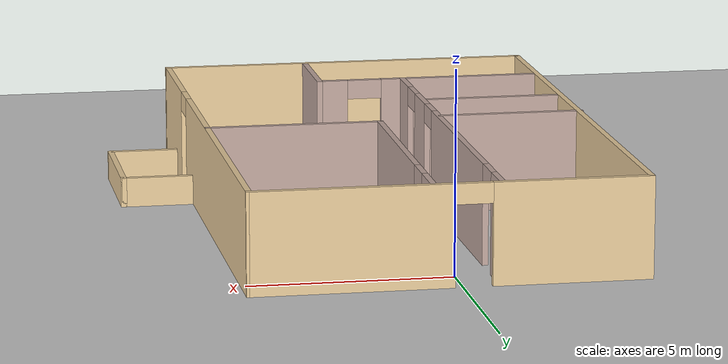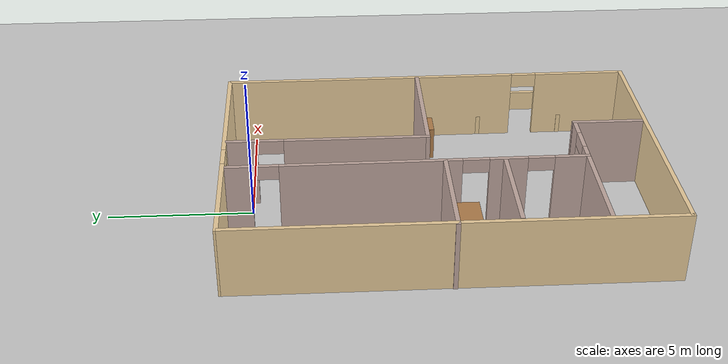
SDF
<sdf version="1.6">
 <world name="default">
  <plugin name="welcome_message" filename="libhello.so"/>
  <light name="sun" type="directional">
   <pose>0 0 10 0 -0 0</pose>
   <diffuse>0.8 0.8 0.8 1</diffuse>
   <specular>0.2 0.2 0.2 1</specular>
   <attenuation>
    <range>1000</range>
    <constant>0.9</constant>
    <linear>0.01</linear>
    <quadratic>0.001</quadratic>
   </attenuation>
   <direction>-0.5 0.1 -0.9</direction>
  </light>
  <model name="ground_plane">
   <static>1</static>
   <link name="link">
    <collision name="collision">
     <geometry><plane><normal>0 0 1</normal><size>100 100</size></plane></geometry>
     <surface>
      <contact><collide_bitmask>65535</collide_bitmask></contact>
      <friction><ode><mu>100</mu><mu2>50</mu2></ode></friction>
     </surface>
    </collision>
    <visual name="visual">
     <cast_shadows>0</cast_shadows>
     <geometry><plane><normal>0 0 1</normal><size>100 100</size></plane></geometry>
     <material>
      <script><uri>file://media/materials/scripts/gazebo.material</uri><name>Gazebo/Grey</name></script>
     </material>
    </visual>
   </link>
  </model>
  <gravity>0 0 -9.8</gravity>
  <magnetic_field>6e-06 2.3e-05 -4.2e-05</magnetic_field>
  <atmosphere type="adiabatic"/>
  <physics name="default_physics" default="0" type="ode">
   <max_step_size>0.001</max_step_size>
   <real_time_factor>1</real_time_factor>
   <real_time_update_rate>1000</real_time_update_rate>
  </physics>
  <scene><ambient>0.4 0.4 0.4 1</ambient><background>0.7 0.7 0.7 1</background><shadows>1</shadows></scene>
  <spherical_coordinates>
   <surface_model>EARTH_WGS84</surface_model>
   <latitude_deg>0</latitude_deg>
   <longitude_deg>0</longitude_deg>
   <elevation>0</elevation>
   <heading_deg>0</heading_deg>
  </spherical_coordinates>
  <model name="Building">
   <pose>1.19328 -6.44935 0 0 -0 0</pose>
   <link name="Wall_0">
    <collision name="Wall_0_Collision">
     <geometry><box><size>14.75 0.15 2.5</size></box></geometry>
     <pose>0 0 1.25 0 -0 0</pose>
    </collision>
    <visual name="Wall_0_Visual">
     <pose>0 0 1.25 0 -0 0</pose>
     <geometry><box><size>14.75 0.15 2.5</size></box></geometry>
     <material>
      <script><uri>file://media/materials/scripts/gazebo.material</uri><name>Gazebo/Grey</name></script>
      <ambient>0.921569 0.807843 0.615686 1</ambient>
     </material>
     <meta><layer>0</layer></meta>
    </visual>
    <pose>-5.70481 -0.037911 0 0 0 -1.5708</pose>
   </link>
   <link name="Wall_1">
    <collision name="Wall_1_Collision">
     <geometry><box><size>9.72533 0.15 2.5</size></box></geometry>
     <pose>0 0 1.25 0 -0 0</pose>
    </collision>
    <visual name="Wall_1_Visual">
     <pose>0 0 1.25 0 -0 0</pose>
     <geometry><box><size>9.72533 0.15 2.5</size></box></geometry>
     <material>
      <script><uri>file://media/materials/scripts/gazebo.material</uri><name>Gazebo/Grey</name></script>
      <ambient>0.921569 0.807843 0.615686 1</ambient>
     </material>
     <meta><layer>0</layer></meta>
    </visual>
    <pose>-0.870929 -7.33745 0 0 -0 9.7e-05</pose>
   </link>
   <link name="Wall_10">
    <collision name="Wall_10_Collision">
     <geometry><box><size>3.75 0.15 2.5</size></box></geometry>
     <pose>0 0 1.25 0 -0 0</pose>
    </collision>
    <visual name="Wall_10_Visual">
     <pose>0 0 1.25 0 -0 0</pose>
     <geometry><box><size>3.75 0.15 2.5</size></box></geometry>
     <material>
      <script><uri>file://media/materials/scripts/gazebo.material</uri><name>Gazebo/Grey</name></script>
      <ambient>0.760784 0.662745 0.627451 1</ambient>
     </material>
     <meta><layer>0</layer></meta>
    </visual>
    <pose>-3.88937 -4.84832 0 0 -0 3.14159</pose>
   </link>
   <link name="Wall_14">
    <collision name="Wall_14_Collision">
     <geometry><box><size>2.5 0.15 2.5</size></box></geometry>
     <pose>0 0 1.25 0 -0 0</pose>
    </collision>
    <visual name="Wall_14_Visual">
     <pose>0 0 1.25 0 -0 0</pose>
     <geometry><box><size>2.5 0.15 2.5</size></box></geometry>
     <material>
      <script><uri>file://media/materials/scripts/gazebo.material</uri><name>Gazebo/Grey</name></script>
      <ambient>0.760784 0.662745 0.627451 1</ambient>
     </material>
     <meta><layer>0</layer></meta>
    </visual>
    <pose>0.19415 -6.01042 0 0 0 -1.5708</pose>
   </link>
   <link name="Wall_16">
    <collision name="Wall_16_Collision">
     <geometry><box><size>4.5 0.15 2.5</size></box></geometry>
     <pose>0 0 1.25 0 -0 0</pose>
    </collision>
    <visual name="Wall_16_Visual">
     <pose>0 0 1.25 0 -0 0</pose>
     <geometry><box><size>4.5 0.15 2.5</size></box></geometry>
     <material>
      <script><uri>file://media/materials/scripts/gazebo.material</uri><name>Gazebo/Grey</name></script>
      <ambient>0.760784 0.662745 0.627451 1</ambient>
     </material>
     <meta><layer>0</layer></meta>
    </visual>
    <pose>1.67785 0.374679 0 0 -0 0</pose>
   </link>
   <link name="Wall_18">
    <collision name="Wall_18_Collision">
     <geometry><box><size>3.5 0.15 2.5</size></box></geometry>
     <pose>0 0 1.25 0 -0 0</pose>
    </collision>
    <visual name="Wall_18_Visual">
     <pose>0 0 1.25 0 -0 0</pose>
     <geometry><box><size>3.5 0.15 2.5</size></box></geometry>
     <material>
      <script><uri>file://media/materials/scripts/gazebo.material</uri><name>Gazebo/Grey</name></script>
      <ambient>0.760784 0.662745 0.627451 1</ambient>
     </material>
     <meta><layer>0</layer></meta>
    </visual>
    <pose>-3.86495 -2.05872 0 0 -0 3.14159</pose>
   </link>
   <link name="Wall_20">
    <collision name="Wall_20_Collision">
     <geometry><box><size>3.75 0.15 2.5</size></box></geometry>
     <pose>0 0 1.25 0 -0 0</pose>
    </collision>
    <visual name="Wall_20_Visual">
     <pose>0 0 1.25 0 -0 0</pose>
     <geometry><box><size>3.75 0.15 2.5</size></box></geometry>
     <material>
      <script><uri>file://media/materials/scripts/gazebo.material</uri><name>Gazebo/Grey</name></script>
      <ambient>0.760784 0.662745 0.627451 1</ambient>
     </material>
     <meta><layer>0</layer></meta>
    </visual>
    <pose>-3.93705 -0.048521 0 0 -0 3.14159</pose>
   </link>
   <link name="Wall_22">
    <pose>-0.991697 -4.84832 0 0 -0 0</pose>
    <visual name="Wall_22_Visual_0">
     <pose>-0.794379 0 1.25 0 -0 0</pose>
     <geometry><box><size>0.661242 0.15 2.5</size></box></geometry>
     <material>
      <script><uri>file://media/materials/scripts/gazebo.material</uri><name>Gazebo/Grey</name></script>
      <ambient>0.760784 0.662745 0.627451 1</ambient>
     </material>
     <meta><layer>0</layer></meta>
    </visual>
    <collision name="Wall_22_Collision_0">
     <geometry><box><size>0.661242 0.15 2.5</size></box></geometry>
     <pose>-0.794379 0 1.25 0 -0 0</pose>
    </collision>
    <visual name="Wall_22_Visual_1">
     <pose>0.780621 0 1.25 0 -0 0</pose>
     <geometry><box><size>0.688758 0.15 2.5</size></box></geometry>
     <material>
      <script><uri>file://media/materials/scripts/gazebo.material</uri><name>Gazebo/Grey</name></script>
      <ambient>0.760784 0.662745 0.627451 1</ambient>
     </material>
     <meta><layer>0</layer></meta>
    </visual>
    <collision name="Wall_22_Collision_1">
     <geometry><box><size>0.688758 0.15 2.5</size></box></geometry>
     <pose>0.780621 0 1.25 0 -0 0</pose>
    </collision>
    <visual name="Wall_22_Visual_2">
     <pose>-0.013758 0 2.25 0 -0 0</pose>
     <geometry><box><size>0.9 0.15 0.5</size></box></geometry>
     <material>
      <script><uri>file://media/materials/scripts/gazebo.material</uri><name>Gazebo/Grey</name></script>
      <ambient>0.760784 0.662745 0.627451 1</ambient>
     </material>
     <meta><layer>0</layer></meta>
    </visual>
    <collision name="Wall_22_Collision_2">
     <geometry><box><size>0.9 0.15 0.5</size></box></geometry>
     <pose>-0.013758 0 2.25 0 -0 0</pose>
    </collision>
   </link>
   <link name="Wall_24">
    <pose>-0.49715 3.79968 0 0 -0 1.5708</pose>
    <visual name="Wall_24_Visual_0">
     <pose>-0.98817 0 1.25 0 -0 0</pose>
     <geometry><box><size>5.02366 0.15 2.5</size></box></geometry>
     <material>
      <script><uri>file://media/materials/scripts/gazebo.material</uri><name>Gazebo/Grey</name></script>
      <ambient>0.760784 0.662745 0.627451 1</ambient>
     </material>
     <meta><layer>0</layer></meta>
    </visual>
    <collision name="Wall_24_Collision_0">
     <geometry><box><size>5.02366 0.15 2.5</size></box></geometry>
     <pose>-0.98817 0 1.25 0 -0 0</pose>
    </collision>
    <visual name="Wall_24_Visual_1">
     <pose>2.96183 0 1.25 0 -0 0</pose>
     <geometry><box><size>1.07634 0.15 2.5</size></box></geometry>
     <material>
      <script><uri>file://media/materials/scripts/gazebo.material</uri><name>Gazebo/Grey</name></script>
      <ambient>0.760784 0.662745 0.627451 1</ambient>
     </material>
     <meta><layer>0</layer></meta>
    </visual>
    <collision name="Wall_24_Collision_1">
     <geometry><box><size>1.07634 0.15 2.5</size></box></geometry>
     <pose>2.96183 0 1.25 0 -0 0</pose>
    </collision>
    <visual name="Wall_24_Visual_2">
     <pose>1.97366 0 2.25 0 -0 0</pose>
     <geometry><box><size>0.9 0.15 0.5</size></box></geometry>
     <material>
      <script><uri>file://media/materials/scripts/gazebo.material</uri><name>Gazebo/Grey</name></script>
      <ambient>0.760784 0.662745 0.627451 1</ambient>
     </material>
     <meta><layer>0</layer></meta>
    </visual>
    <collision name="Wall_24_Collision_2">
     <geometry><box><size>0.9 0.15 0.5</size></box></geometry>
     <pose>1.97366 0 2.25 0 -0 0</pose>
    </collision>
   </link>
   <link name="Wall_29">
    <pose>3.87687 0.000265 0 0 0 -1.56537</pose>
    <visual name="Wall_29_Visual_0">
     <pose>-2.10776 0 1.25 0 -0 0</pose>
     <geometry><box><size>10.6092 0.15 2.5</size></box></geometry>
     <material>
      <script><uri>file://media/materials/scripts/gazebo.material</uri><name>Gazebo/Grey</name></script>
      <ambient>0.921569 0.807843 0.615686 1</ambient>
     </material>
     <meta><layer>0</layer></meta>
    </visual>
    <collision name="Wall_29_Collision_0">
     <geometry><box><size>10.6092 0.15 2.5</size></box></geometry>
     <pose>-2.10776 0 1.25 0 -0 0</pose>
    </collision>
    <visual name="Wall_29_Visual_1">
     <pose>5.75459 0 1.25 0 -0 0</pose>
     <geometry><box><size>3.31552 0.15 2.5</size></box></geometry>
     <material>
      <script><uri>file://media/materials/scripts/gazebo.material</uri><name>Gazebo/Grey</name></script>
      <ambient>0.921569 0.807843 0.615686 1</ambient>
     </material>
     <meta><layer>0</layer></meta>
    </visual>
    <collision name="Wall_29_Collision_1">
     <geometry><box><size>3.31552 0.15 2.5</size></box></geometry>
     <pose>5.75459 0 1.25 0 -0 0</pose>
    </collision>
    <visual name="Wall_29_Visual_2">
     <pose>3.64683 0 2.25 0 -0 0</pose>
     <geometry><box><size>0.9 0.15 0.5</size></box></geometry>
     <material>
      <script><uri>file://media/materials/scripts/gazebo.material</uri><name>Gazebo/Grey</name></script>
      <ambient>0.921569 0.807843 0.615686 1</ambient>
     </material>
     <meta><layer>0</layer></meta>
    </visual>
    <collision name="Wall_29_Collision_2">
     <geometry><box><size>0.9 0.15 0.5</size></box></geometry>
     <pose>3.64683 0 2.25 0 -0 0</pose>
    </collision>
   </link>
   <link name="Wall_31">
    <collision name="Wall_31_Collision">
     <geometry><box><size>2 0.15 0.75</size></box></geometry>
     <pose>0 0 0.375 0 -0 0</pose>
    </collision>
    <visual name="Wall_31_Visual">
     <pose>0 0 0.375 0 -0 0</pose>
     <geometry><box><size>2 0.15 0.75</size></box></geometry>
     <material>
      <script><uri>file://media/materials/scripts/gazebo.material</uri><name>Gazebo/Grey</name></script>
      <ambient>0.921569 0.807843 0.615686 1</ambient>
     </material>
     <meta><layer>0</layer></meta>
    </visual>
    <pose>4.81205 -2.00149 0 0 -0 0</pose>
   </link>
   <link name="Wall_32">
    <collision name="Wall_32_Collision">
     <geometry><box><size>3.25 0.15 0.75</size></box></geometry>
     <pose>0 0 0.375 0 -0 0</pose>
    </collision>
    <visual name="Wall_32_Visual">
     <pose>0 0 0.375 0 -0 0</pose>
     <geometry><box><size>3.25 0.15 0.75</size></box></geometry>
     <material>
      <script><uri>file://media/materials/scripts/gazebo.material</uri><name>Gazebo/Grey</name></script>
      <ambient>0.921569 0.807843 0.615686 1</ambient>
     </material>
     <meta><layer>0</layer></meta>
    </visual>
    <pose>5.73705 -3.55149 0 0 0 -1.5708</pose>
   </link>
   <link name="Wall_33">
    <collision name="Wall_33_Collision">
     <geometry><box><size>2 0.15 0.75</size></box></geometry>
     <pose>0 0 0.375 0 -0 0</pose>
    </collision>
    <visual name="Wall_33_Visual">
     <pose>0 0 0.375 0 -0 0</pose>
     <geometry><box><size>2 0.15 0.75</size></box></geometry>
     <material>
      <script><uri>file://media/materials/scripts/gazebo.material</uri><name>Gazebo/Grey</name></script>
      <ambient>0.921569 0.807843 0.615686 1</ambient>
     </material>
     <meta><layer>0</layer></meta>
    </visual>
    <pose>4.81205 -5.10149 0 0 -0 3.14159</pose>
   </link>
   <link name="Wall_7">
    <pose>-0.93145 7.33751 0 0 -0 3.14159</pose>
    <visual name="Wall_7_Visual_0">
     <pose>-2.38427 0 1.25 0 -0 0</pose>
     <geometry><box><size>4.91846 0.15 2.5</size></box></geometry>
     <material>
      <script><uri>file://media/materials/scripts/gazebo.material</uri><name>Gazebo/Grey</name></script>
      <ambient>0.921569 0.807843 0.615686 1</ambient>
     </material>
     <meta><layer>0</layer></meta>
    </visual>
    <collision name="Wall_7_Collision_0">
     <geometry><box><size>4.91846 0.15 2.5</size></box></geometry>
     <pose>-2.38427 0 1.25 0 -0 0</pose>
    </collision>
    <visual name="Wall_7_Visual_1">
     <pose>2.90923 0 1.25 0 -0 0</pose>
     <geometry><box><size>3.86854 0.15 2.5</size></box></geometry>
     <material>
      <script><uri>file://media/materials/scripts/gazebo.material</uri><name>Gazebo/Grey</name></script>
      <ambient>0.921569 0.807843 0.615686 1</ambient>
     </material>
     <meta><layer>0</layer></meta>
    </visual>
    <collision name="Wall_7_Collision_1">
     <geometry><box><size>3.86854 0.15 2.5</size></box></geometry>
     <pose>2.90923 0 1.25 0 -0 0</pose>
    </collision>
    <visual name="Wall_7_Visual_2">
     <pose>0.524956 0 2.25 0 -0 0</pose>
     <geometry><box><size>0.9 0.15 0.5</size></box></geometry>
     <material>
      <script><uri>file://media/materials/scripts/gazebo.material</uri><name>Gazebo/Grey</name></script>
      <ambient>0.921569 0.807843 0.615686 1</ambient>
     </material>
     <meta><layer>0</layer></meta>
    </visual>
    <collision name="Wall_7_Collision_2">
     <geometry><box><size>0.9 0.15 0.5</size></box></geometry>
     <pose>0.524956 0 2.25 0 -0 0</pose>
    </collision>
   </link>
   <link name="Wall_9">
    <pose>-2.08937 1.20168 0 0 0 -1.56292</pose>
    <visual name="Wall_9_Visual_0">
     <pose>-5.6461 0 1.25 0 -0 0</pose>
     <geometry><box><size>0.957792 0.15 2.5</size></box></geometry>
     <material>
      <script><uri>file://media/materials/scripts/gazebo.material</uri><name>Gazebo/Grey</name></script>
      <ambient>0.760784 0.662745 0.627451 1</ambient>
     </material>
     <meta><layer>0</layer></meta>
    </visual>
    <collision name="Wall_9_Collision_0">
     <geometry><box><size>0.957792 0.15 2.5</size></box></geometry>
     <pose>-5.6461 0 1.25 0 -0 0</pose>
    </collision>
    <visual name="Wall_9_Visual_1">
     <pose>-1.21814 0 1.25 0 -0 0</pose>
     <geometry><box><size>6.09813 0.15 2.5</size></box></geometry>
     <material>
      <script><uri>file://media/materials/scripts/gazebo.material</uri><name>Gazebo/Grey</name></script>
      <ambient>0.760784 0.662745 0.627451 1</ambient>
     </material>
     <meta><layer>0</layer></meta>
    </visual>
    <collision name="Wall_9_Collision_1">
     <geometry><box><size>6.09813 0.15 2.5</size></box></geometry>
     <pose>-1.21814 0 1.25 0 -0 0</pose>
    </collision>
    <visual name="Wall_9_Visual_2">
     <pose>3.37888 0 1.25 0 -0 0</pose>
     <geometry><box><size>1.29592 0.15 2.5</size></box></geometry>
     <material>
      <script><uri>file://media/materials/scripts/gazebo.material</uri><name>Gazebo/Grey</name></script>
      <ambient>0.760784 0.662745 0.627451 1</ambient>
     </material>
     <meta><layer>0</layer></meta>
    </visual>
    <collision name="Wall_9_Collision_2">
     <geometry><box><size>1.29592 0.15 2.5</size></box></geometry>
     <pose>3.37888 0 1.25 0 -0 0</pose>
    </collision>
    <visual name="Wall_9_Visual_3">
     <pose>5.52592 0 1.25 0 -0 0</pose>
     <geometry><box><size>1.19816 0.15 2.5</size></box></geometry>
     <material>
      <script><uri>file://media/materials/scripts/gazebo.material</uri><name>Gazebo/Grey</name></script>
      <ambient>0.760784 0.662745 0.627451 1</ambient>
     </material>
     <meta><layer>0</layer></meta>
    </visual>
    <collision name="Wall_9_Collision_3">
     <geometry><box><size>1.19816 0.15 2.5</size></box></geometry>
     <pose>5.52592 0 1.25 0 -0 0</pose>
    </collision>
    <visual name="Wall_9_Visual_4">
     <pose>-4.71721 0 2.25 0 -0 0</pose>
     <geometry><box><size>0.9 0.15 0.5</size></box></geometry>
     <material>
      <script><uri>file://media/materials/scripts/gazebo.material</uri><name>Gazebo/Grey</name></script>
      <ambient>0.760784 0.662745 0.627451 1</ambient>
     </material>
     <meta><layer>0</layer></meta>
    </visual>
    <collision name="Wall_9_Collision_4">
     <geometry><box><size>0.9 0.15 0.5</size></box></geometry>
     <pose>-4.71721 0 2.25 0 -0 0</pose>
    </collision>
    <visual name="Wall_9_Visual_5">
     <pose>2.28092 0 2.25 0 -0 0</pose>
     <geometry><box><size>0.9 0.15 0.5</size></box></geometry>
     <material>
      <script><uri>file://media/materials/scripts/gazebo.material</uri><name>Gazebo/Grey</name></script>
      <ambient>0.760784 0.662745 0.627451 1</ambient>
     </material>
     <meta><layer>0</layer></meta>
    </visual>
    <collision name="Wall_9_Collision_5">
     <geometry><box><size>0.9 0.15 0.5</size></box></geometry>
     <pose>2.28092 0 2.25 0 -0 0</pose>
    </collision>
    <visual name="Wall_9_Visual_6">
     <pose>4.47684 0 2.25 0 -0 0</pose>
     <geometry><box><size>0.9 0.15 0.5</size></box></geometry>
     <material>
      <script><uri>file://media/materials/scripts/gazebo.material</uri><name>Gazebo/Grey</name></script>
      <ambient>0.760784 0.662745 0.627451 1</ambient>
     </material>
     <meta><layer>0</layer></meta>
    </visual>
    <collision name="Wall_9_Collision_6">
     <geometry><box><size>0.9 0.15 0.5</size></box></geometry>
     <pose>4.47684 0 2.25 0 -0 0</pose>
    </collision>
   </link>
   <static>1</static>
  </model>
  <model name="table">
   <static>1</static>
   <link name="link">
    <collision name="surface">
     <pose>0 0 1 0 -0 0</pose>
     <geometry><box><size>1.5 0.8 0.03</size></box></geometry>
     <surface><friction><ode><mu>0.6</mu><mu2>0.6</mu2></ode></friction></surface>
    </collision>
    <visual name="visual1">
     <pose>0 0 1 0 -0 0</pose>
     <geometry><box><size>1.5 0.8 0.03</size></box></geometry>
     <material>
      <script><uri>file://media/materials/scripts/gazebo.material</uri><name>Gazebo/Wood</name></script>
     </material>
    </visual>
    <collision name="front_left_leg">
     <pose>0.68 0.38 0.5 0 -0 0</pose>
     <geometry><cylinder><radius>0.02</radius><length>1</length></cylinder></geometry>
    </collision>
    <visual name="front_left_leg">
     <pose>0.68 0.38 0.5 0 -0 0</pose>
     <geometry><cylinder><radius>0.02</radius><length>1</length></cylinder></geometry>
     <material>
      <script><uri>file://media/materials/scripts/gazebo.material</uri><name>Gazebo/Grey</name></script>
     </material>
    </visual>
    <collision name="front_right_leg">
     <pose>0.68 -0.38 0.5 0 -0 0</pose>
     <geometry><cylinder><radius>0.02</radius><length>1</length></cylinder></geometry>
    </collision>
    <visual name="front_right_leg">
     <pose>0.68 -0.38 0.5 0 -0 0</pose>
     <geometry><cylinder><radius>0.02</radius><length>1</length></cylinder></geometry>
     <material>
      <script><uri>file://media/materials/scripts/gazebo.material</uri><name>Gazebo/Grey</name></script>
     </material>
    </visual>
    <collision name="back_right_leg">
     <pose>-0.68 -0.38 0.5 0 -0 0</pose>
     <geometry><cylinder><radius>0.02</radius><length>1</length></cylinder></geometry>
    </collision>
    <visual name="back_right_leg">
     <pose>-0.68 -0.38 0.5 0 -0 0</pose>
     <geometry><cylinder><radius>0.02</radius><length>1</length></cylinder></geometry>
     <material>
      <script><uri>file://media/materials/scripts/gazebo.material</uri><name>Gazebo/Grey</name></script>
     </material>
    </visual>
    <collision name="back_left_leg">
     <pose>-0.68 0.38 0.5 0 -0 0</pose>
     <geometry><cylinder><radius>0.02</radius><length>1</length></cylinder></geometry>
    </collision>
    <visual name="back_left_leg">
     <pose>-0.68 0.38 0.5 0 -0 0</pose>
     <geometry><cylinder><radius>0.02</radius><length>1</length></cylinder></geometry>
     <material>
      <script><uri>file://media/materials/scripts/gazebo.material</uri><name>Gazebo/Grey</name></script>
     </material>
    </visual>
   </link>
   <pose>-1.98426 -7.25701 0 0 -0 0</pose>
  </model>
  <model name="bookshelf">
   <static>1</static>
   <link name="link">
    <inertial><mass>1</mass></inertial>
    <collision name="back">
     <pose>0 0.005 0.6 0 -0 0</pose>
     <geometry><box><size>0.9 0.01 1.2</size></box></geometry>
    </collision>
    <visual name="visual1">
     <pose>0 0.005 0.6 0 -0 0</pose>
     <geometry><box><size>0.9 0.01 1.2</size></box></geometry>
     <material>
      <script><uri>file://media/materials/scripts/gazebo.material</uri><name>Gazebo/Wood</name></script>
     </material>
    </visual>
    <collision name="left_side">
     <pose>0.45 -0.195 0.6 0 -0 0</pose>
     <geometry><box><size>0.02 0.4 1.2</size></box></geometry>
    </collision>
    <visual name="visual2">
     <pose>0.45 -0.195 0.6 0 -0 0</pose>
     <geometry><box><size>0.02 0.4 1.2</size></box></geometry>
     <material>
      <script><uri>file://media/materials/scripts/gazebo.material</uri><name>Gazebo/Wood</name></script>
     </material>
    </visual>
    <collision name="right_side">
     <pose>-0.45 -0.195 0.6 0 -0 0</pose>
     <geometry><box><size>0.02 0.4 1.2</size></box></geometry>
    </collision>
    <visual name="visual3">
     <pose>-0.45 -0.195 0.6 0 -0 0</pose>
     <geometry><box><size>0.02 0.4 1.2</size></box></geometry>
     <material>
      <script><uri>file://media/materials/scripts/gazebo.material</uri><name>Gazebo/Wood</name></script>
     </material>
    </visual>
    <collision name="bottom">
     <pose>0 -0.195 0.03 0 -0 0</pose>
     <geometry><box><size>0.88 0.4 0.06</size></box></geometry>
    </collision>
    <visual name="visual4">
     <pose>0 -0.195 0.03 0 -0 0</pose>
     <geometry><box><size>0.88 0.4 0.06</size></box></geometry>
     <material>
      <script><uri>file://media/materials/scripts/gazebo.material</uri><name>Gazebo/Wood</name></script>
     </material>
    </visual>
    <collision name="top">
     <pose>0 -0.195 1.19 0 -0 0</pose>
     <geometry><box><size>0.88 0.4 0.02</size></box></geometry>
    </collision>
    <visual name="visual5">
     <pose>0 -0.195 1.19 0 -0 0</pose>
     <geometry><box><size>0.88 0.4 0.02</size></box></geometry>
     <material>
      <script><uri>file://media/materials/scripts/gazebo.material</uri><name>Gazebo/Wood</name></script>
     </material>
    </visual>
    <collision name="low_shelf">
     <pose>0 -0.195 0.43 0 -0 0</pose>
     <geometry><box><size>0.88 0.4 0.02</size></box></geometry>
    </collision>
    <visual name="visual6">
     <pose>0 -0.195 0.43 0 -0 0</pose>
     <geometry><box><size>0.88 0.4 0.02</size></box></geometry>
     <material>
      <script><uri>file://media/materials/scripts/gazebo.material</uri><name>Gazebo/Wood</name></script>
     </material>
    </visual>
    <collision name="high_shelf">
     <pose>0 -0.195 0.8 0 -0 0</pose>
     <geometry><box><size>0.88 0.4 0.02</size></box></geometry>
    </collision>
    <visual name="visual7">
     <pose>0 -0.195 0.8 0 -0 0</pose>
     <geometry><box><size>0.88 0.4 0.02</size></box></geometry>
     <material>
      <script><uri>file://media/materials/scripts/gazebo.material</uri><name>Gazebo/Wood</name></script>
     </material>
    </visual>
   </link>
   <pose>3.80123 -6.19695 0 0 -0 0</pose>
  </model>
 </world>
</sdf>
